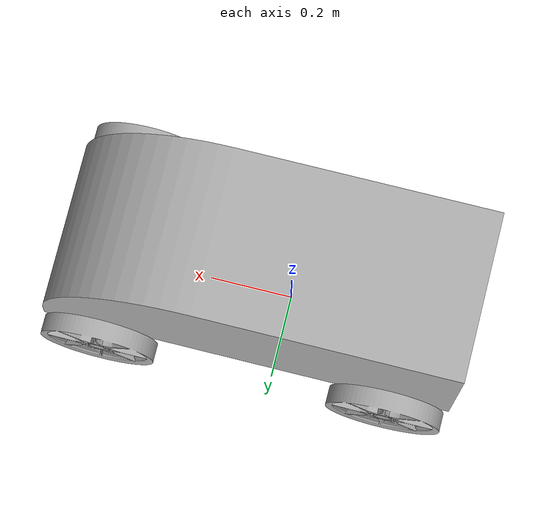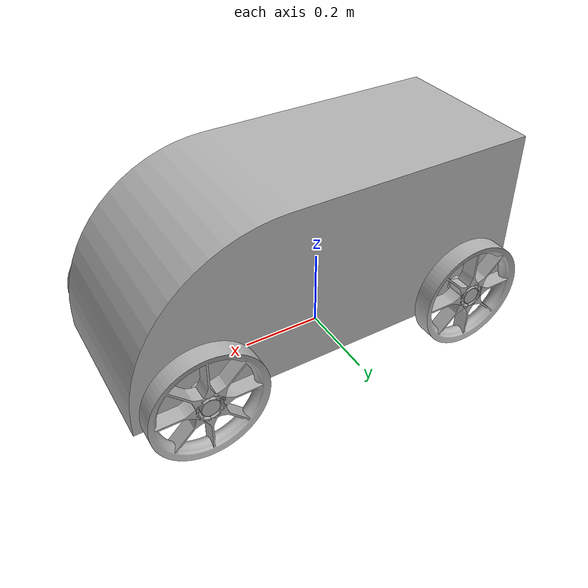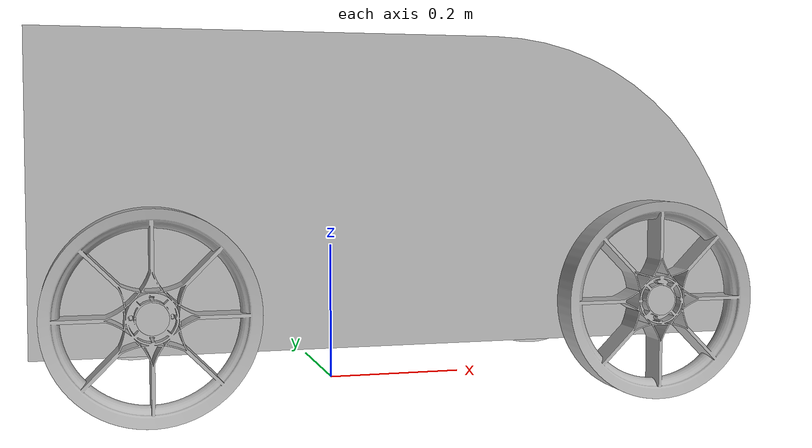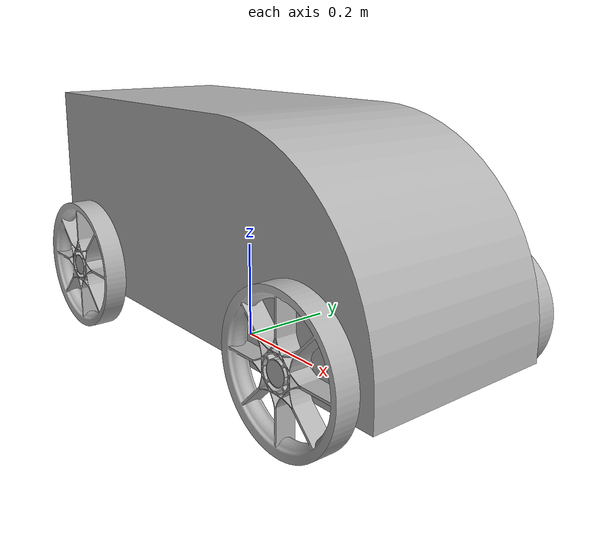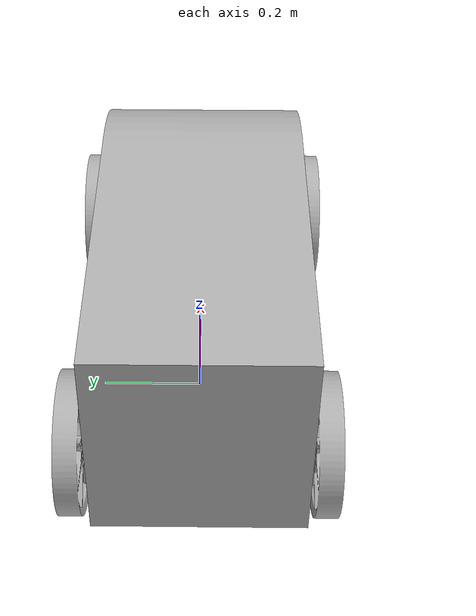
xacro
<?xml version="1.0" ?>
<robot name="lunabotics_sim_v2" xmlns:xacro="http://www.ros.org/wiki/xacro">

<xacro:include filename="$(find lunabotics_sim_v2_description)/urdf/materials.xacro" />
<xacro:include filename="$(find lunabotics_sim_v2_description)/urdf/lunabotics_sim_v2.trans" />
<xacro:include filename="$(find lunabotics_sim_v2_description)/urdf/lunabotics_sim_v2.gazebo" />
<link name="base_link">
  <inertial>
    <origin rpy="0 0 0" xyz="0.032149571312981434 -0.00401726346553819 0.27839649110935255"/>
    <mass value="1186.026353003764"/>
    <inertia ixx="31.965427" ixy="-0.000718" ixz="4.905722" iyy="103.623463" iyz="0.003158" izz="102.537669"/>
  </inertial>
  <visual>
    <origin rpy="0 0 0" xyz="0 0 0"/>
    <geometry>
      <mesh filename="package://lunabotics_sim_v2_description/meshes/base_link.stl" scale="0.001 0.001 0.001"/>
    </geometry>
    <material name="silver"/>
  </visual>
  <collision>
    <origin rpy="0 0 0" xyz="0 0 0"/>
    <geometry>
      <mesh filename="package://lunabotics_sim_v2_description/meshes/base_link.stl" scale="0.001 0.001 0.001"/>
    </geometry>
  </collision>
</link>

<link name="back_right_wheel_1">
  <inertial>
    <origin rpy="0 0 0" xyz="-0.2804869184835052 -0.23793697378054496 0.11715710503979594"/>
    <mass value="1.5625153961807745"/>
    <inertia ixx="0.011616" ixy="-0.0" ixz="-0.0" iyy="0.022862" iyz="-0.0" izz="0.011628"/>
  </inertial>
  <visual>
    <origin rpy="0 0 0" xyz="-0.0 0.0 -0.01905"/>
    <geometry>
      <mesh filename="package://lunabotics_sim_v2_description/meshes/back_right_wheel_1.stl" scale="0.001 0.001 0.001"/>
    </geometry>
    <material name="silver"/>
  </visual>
  <collision>
    <origin rpy="0 0 0" xyz="-0.0 0.0 -0.01905"/>
    <geometry>
      <mesh filename="package://lunabotics_sim_v2_description/meshes/back_right_wheel_1.stl" scale="0.001 0.001 0.001"/>
    </geometry>
  </collision>
</link>

<link name="front_left_wheel_1">
  <inertial>
    <origin rpy="0 0 0" xyz="0.40951338717119623 0.23396302621944895 0.15525710503979598"/>
    <mass value="1.5625153961807745"/>
    <inertia ixx="0.011616" ixy="-0.0" ixz="-0.0" iyy="0.022862" iyz="-0.0" izz="0.011628"/>
  </inertial>
  <visual>
    <origin rpy="0 0 0" xyz="-0.0 -0.0 0.01905"/>
    <geometry>
      <mesh filename="package://lunabotics_sim_v2_description/meshes/front_left_wheel_1.stl" scale="0.001 0.001 0.001"/>
    </geometry>
    <material name="silver"/>
  </visual>
  <collision>
    <origin rpy="0 0 0" xyz="-0.0 -0.0 0.01905"/>
    <geometry>
      <mesh filename="package://lunabotics_sim_v2_description/meshes/front_left_wheel_1.stl" scale="0.001 0.001 0.001"/>
    </geometry>
  </collision>
</link>

<link name="front_right_wheel_1">
  <inertial>
    <origin rpy="0 0 0" xyz="0.40951338717119184 -0.23793697378055145 0.11715710503979597"/>
    <mass value="1.5625153961807745"/>
    <inertia ixx="0.011616" ixy="-0.0" ixz="-0.0" iyy="0.022862" iyz="-0.0" izz="0.011628"/>
  </inertial>
  <visual>
    <origin rpy="0 0 0" xyz="-0.0 0.0 -0.01905"/>
    <geometry>
      <mesh filename="package://lunabotics_sim_v2_description/meshes/front_right_wheel_1.stl" scale="0.001 0.001 0.001"/>
    </geometry>
    <material name="silver"/>
  </visual>
  <collision>
    <origin rpy="0 0 0" xyz="-0.0 0.0 -0.01905"/>
    <geometry>
      <mesh filename="package://lunabotics_sim_v2_description/meshes/front_right_wheel_1.stl" scale="0.001 0.001 0.001"/>
    </geometry>
  </collision>
</link>

<link name="back_left_wheel_1">
  <inertial>
    <origin rpy="0 0 0" xyz="-0.28048691848350027 0.23396302621945503 0.15525710503979598"/>
    <mass value="1.5625153961807745"/>
    <inertia ixx="0.011616" ixy="-0.0" ixz="-0.0" iyy="0.022862" iyz="-0.0" izz="0.011628"/>
  </inertial>
  <visual>
    <origin rpy="0 0 0" xyz="-0.0 -0.0 0.01905"/>
    <geometry>
      <mesh filename="package://lunabotics_sim_v2_description/meshes/back_left_wheel_1.stl" scale="0.001 0.001 0.001"/>
    </geometry>
    <material name="silver"/>
  </visual>
  <collision>
    <origin rpy="0 0 0" xyz="-0.0 -0.0 0.01905"/>
    <geometry>
      <mesh filename="package://lunabotics_sim_v2_description/meshes/back_left_wheel_1.stl" scale="0.001 0.001 0.001"/>
    </geometry>
  </collision>
</link>

<joint name="back_right" type="continuous">
  <origin rpy="0 0 0" xyz="0.0 0.0 0.01905"/>
  <parent link="base_link"/>
  <child link="back_right_wheel_1"/>
  <axis xyz="-0.0 -1.0 -0.0"/>
</joint>

<joint name="front_left" type="continuous">
  <origin rpy="0 0 0" xyz="0.0 0.0 -0.01905"/>
  <parent link="base_link"/>
  <child link="front_left_wheel_1"/>
  <axis xyz="0.0 1.0 0.0"/>
</joint>

<joint name="front_right" type="continuous">
  <origin rpy="0 0 0" xyz="0.0 0.0 0.01905"/>
  <parent link="base_link"/>
  <child link="front_right_wheel_1"/>
  <axis xyz="-0.0 -1.0 -0.0"/>
</joint>

<joint name="back_left" type="continuous">
  <origin rpy="0 0 0" xyz="0.0 0.0 -0.01905"/>
  <parent link="base_link"/>
  <child link="back_left_wheel_1"/>
  <axis xyz="0.0 1.0 0.0"/>
</joint>

</robot>

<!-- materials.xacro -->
<robot name="lunabotics_sim_v2" xmlns:xacro="http://www.ros.org/wiki/xacro" >

<material name="silver">
  <color rgba="0.700 0.700 0.700 1.000"/>
</material>

</robot>

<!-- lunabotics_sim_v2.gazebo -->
<robot name="lunabotics_sim_v2" xmlns:xacro="http://www.ros.org/wiki/xacro" >

<xacro:property name="body_color" value="Gazebo/Silver" />

<gazebo>
  <plugin filename="libgazebo_ros_control.so" name="control"/>
</gazebo>
<gazebo reference="base_link">
  <material>${body_color}</material>
  <mu1>0.2</mu1>
  <mu2>0.2</mu2>
  <selfCollide>true</selfCollide>
  <gravity>true</gravity>
</gazebo>

<gazebo reference="back_right_wheel_1">
  <material>${body_color}</material>
  <mu1>0.2</mu1>
  <mu2>0.2</mu2>
  <selfCollide>true</selfCollide>
</gazebo>

<gazebo reference="front_left_wheel_1">
  <material>${body_color}</material>
  <mu1>0.2</mu1>
  <mu2>0.2</mu2>
  <selfCollide>true</selfCollide>
</gazebo>

<gazebo reference="front_right_wheel_1">
  <material>${body_color}</material>
  <mu1>0.2</mu1>
  <mu2>0.2</mu2>
  <selfCollide>true</selfCollide>
</gazebo>

<gazebo reference="back_left_wheel_1">
  <material>${body_color}</material>
  <mu1>0.2</mu1>
  <mu2>0.2</mu2>
  <selfCollide>true</selfCollide>
</gazebo>

</robot>
